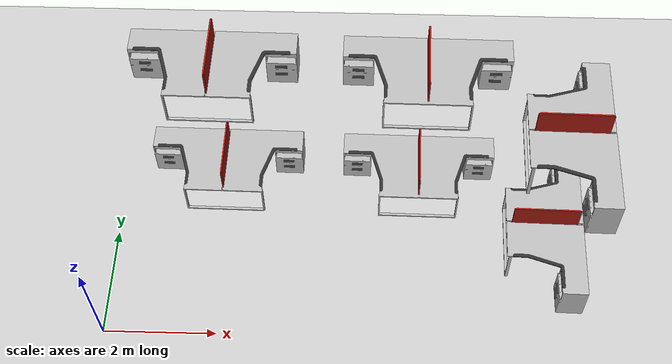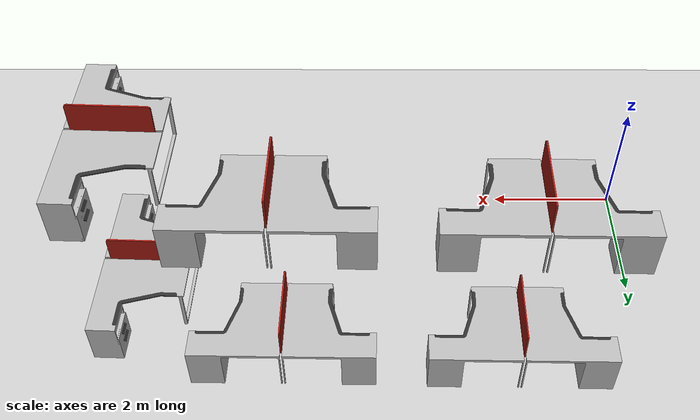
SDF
<sdf version="1.6">
 <world name="default">
  <model name="ground_plane">
   <static>1</static>
   <link name="link">
    <collision name="collision">
     <geometry><plane><normal>0 0 1</normal><size>100 100</size></plane></geometry>
     <surface><friction><ode><mu>100</mu><mu2>50</mu2></ode></friction></surface>
    </collision>
    <visual name="visual">
     <cast_shadows>0</cast_shadows>
     <geometry><plane><normal>0 0 1</normal><size>100 100</size></plane></geometry>
     <material>
      <script><uri>file://media/materials/scripts/gazebo.material</uri><name>Gazebo/Grey</name></script>
     </material>
    </visual>
   </link>
  </model>
  <include>
   <uri>model://rs_gazebo/models/ss_hq4/414_double_table</uri>
   <name>'''''414_double_table_clone_0'''''</name>
   <pose>5.55518 3.1704 0.440048 0.010783 3e-06 -0.012795</pose>
  </include>
  <include>
   <uri>model://rs_gazebo/models/ss_hq4/414_double_table</uri>
   <name>'''''414_double_table_clone_0''_clone'''</name>
   <pose>1.95159 3.23402 0.440056 0.01077 -0 -0.013048</pose>
  </include>
  <include>
   <uri>model://rs_gazebo/models/ss_hq4/414_double_table</uri>
   <name>'''''414_double_table_clone_1'''''</name>
   <pose>7.81453 1.99424 0.440059 0.010752 0 -1.59832</pose>
  </include>
  <include>
   <uri>model://rs_gazebo/models/ss_hq4/414_double_table</uri>
   <name>'''''414_double_table_clone_0_4'''''</name>
   <pose>5.55518 3.1704 3.240048 0.010783 3e-06 -0.012795</pose>
  </include>
  <include>
   <uri>model://rs_gazebo/models/ss_hq4/414_double_table</uri>
   <name>'''''414_double_table_clone_0_4''_clone'''</name>
   <pose>1.95159 3.23402 3.240056 0.01077 -0 -0.013048</pose>
  </include>
  <include>
   <uri>model://rs_gazebo/models/ss_hq4/414_double_table</uri>
   <name>'''''414_double_table_clone_1_4'''''</name>
   <pose>7.81453 1.99424 3.240059 0.010752 0 -1.59832</pose>
  </include>
 </world>
</sdf>
